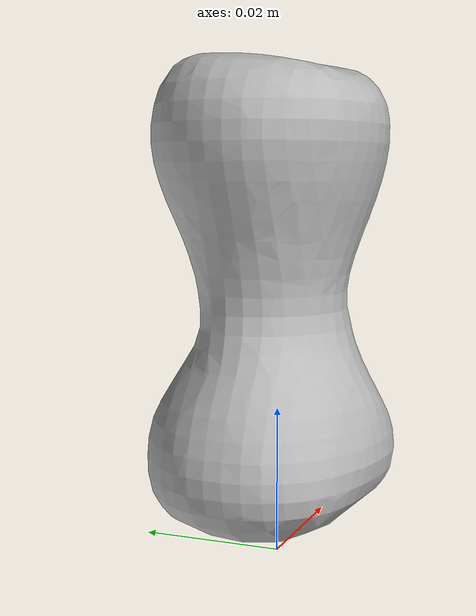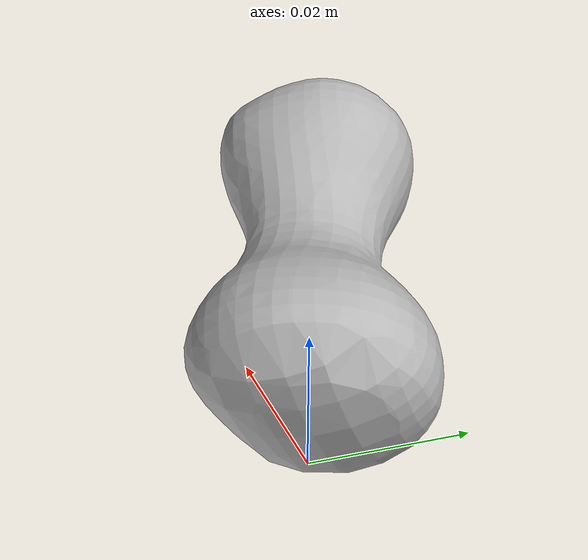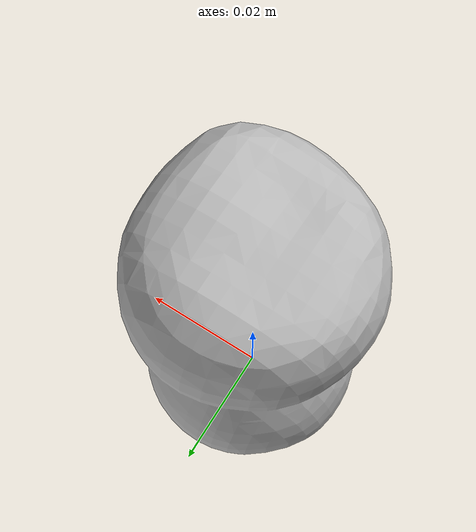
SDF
<?xml version='1.0'?>
<sdf version="1.4">
  <model name="072-i_toy_airplane">
    <static>false</static>
    <link name="link">
      <inertial>
        <pose>-9.231641670191295e-05 0.0012232341525121463 0.03473526947130594 -3.1347944968746817 0.018703335354251387 -2.3008837072172503</pose>
        <mass>0.004744015674819728</mass>
        <inertia>
          <ixx>1.7129867186002023e-06</ixx>
          <ixy>9.304832682882507e-23</ixy>
          <ixz>2.8393924093322555e-22</ixz>
          <iyy>1.6692697811010642e-06</iyy>
          <iyz>-1.7492189256142388e-22</iyz>
          <izz>5.850723938353091e-07</izz>
        </inertia>
      </inertial>
      <collision name="collision">
        <geometry>
          <mesh>
            <!-- Use a downsampled mesh for collisions -->
            <uri>model:///072-i_toy_airplane/072-i_toy_airplane_250_collision.stl</uri>
	        </mesh>
        </geometry>
        <surface>
      </surface>
      </collision>
      <visual name="visual">
        <geometry>
          <mesh>
            <uri>model:///072-i_toy_airplane/textured.obj</uri>
	        </mesh>
        </geometry>
        <material>
          <script>
            <uri>model:///072-i_toy_airplane/072-i_toy_airplane.material</uri>
            <name>072-i_toy_airplane</name>
          </script>
        </material>
      </visual>
    </link>
  </model>
</sdf>
